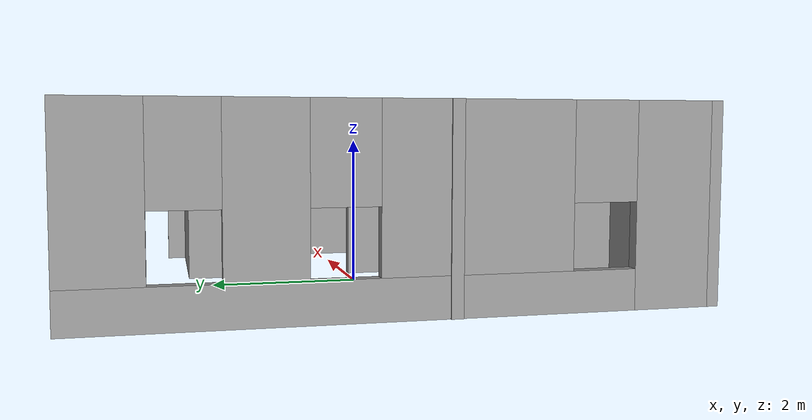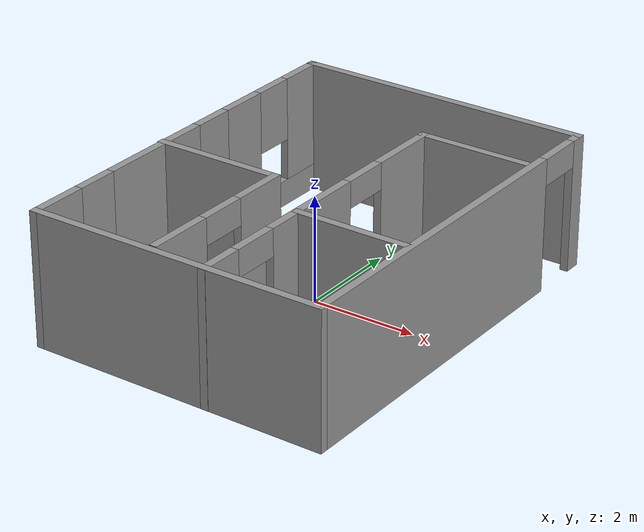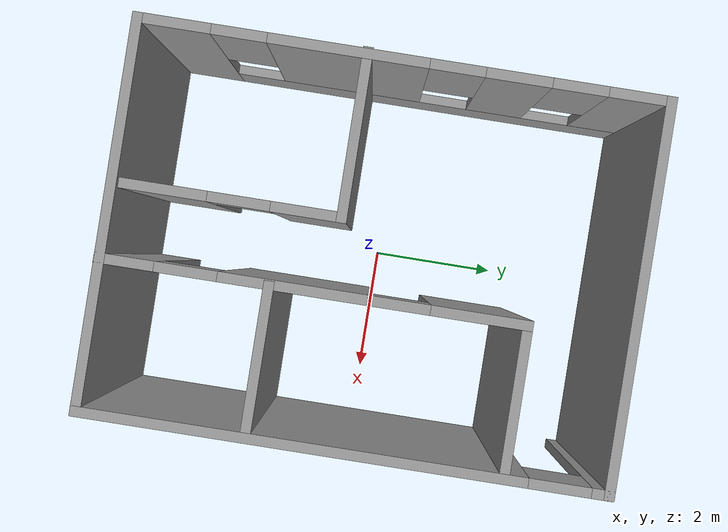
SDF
<?xml version='1.0'?>
<sdf version='1.6'>
  <model name='test_apartment'>
    <pose frame=''>0.059416 -0.066094 0 0 -0 0</pose>
    <link name='Wall_0'>
      <collision name='Wall_0_Collision'>
        <geometry>
          <box>
            <size>5.75 0.15 2.5</size>
          </box>
        </geometry>
        <pose frame=''>0 0 1.25 0 -0 0</pose>
      </collision>
      <visual name='Wall_0_Visual'>
        <pose frame=''>0 0 1.25 0 -0 0</pose>
        <geometry>
          <box>
            <size>5.75 0.15 2.5</size>
          </box>
        </geometry>
        <material>
          <script>
            <uri>file://media/materials/scripts/gazebo.material</uri>
            <name>Gazebo/Grey</name>
          </script>
          <ambient>1 1 1 1</ambient>
        </material>
      </visual>
      <pose frame=''>0.010057 3.80146 0 0 -0 0</pose>
    </link>
    <link name='Wall_1'>
      <pose frame=''>2.81006 0.001465 0 0 0 -1.5708</pose>
      <visual name='Wall_1_Visual_0'>
        <pose frame=''>-3.71051 0 1.25 0 -0 0</pose>
        <geometry>
          <box>
            <size>0.328975 0.15 2.5</size>
          </box>
        </geometry>
        <material>
          <script>
            <uri>file://media/materials/scripts/gazebo.material</uri>
            <name>Gazebo/Grey</name>
          </script>
          <ambient>1 1 1 1</ambient>
        </material>
      </visual>
      <collision name='Wall_1_Collision_0'>
        <geometry>
          <box>
            <size>0.328975 0.15 2.5</size>
          </box>
        </geometry>
        <pose frame=''>-3.71051 0 1.25 0 -0 0</pose>
      </collision>
      <visual name='Wall_1_Visual_1'>
        <pose frame=''>0.614488 0 1.25 0 -0 0</pose>
        <geometry>
          <box>
            <size>6.52102 0.15 2.5</size>
          </box>
        </geometry>
        <material>
          <script>
            <uri>file://media/materials/scripts/gazebo.material</uri>
            <name>Gazebo/Grey</name>
          </script>
          <ambient>1 1 1 1</ambient>
        </material>
      </visual>
      <collision name='Wall_1_Collision_1'>
        <geometry>
          <box>
            <size>6.52102 0.15 2.5</size>
          </box>
        </geometry>
        <pose frame=''>0.614488 0 1.25 0 -0 0</pose>
      </collision>
      <visual name='Wall_1_Visual_2'>
        <pose frame=''>-3.09603 0 2.25 0 -0 0</pose>
        <geometry>
          <box>
            <size>0.9 0.15 0.5</size>
          </box>
        </geometry>
        <material>
          <script>
            <uri>file://media/materials/scripts/gazebo.material</uri>
            <name>Gazebo/Grey</name>
          </script>
          <ambient>1 1 1 1</ambient>
        </material>
      </visual>
      <collision name='Wall_1_Collision_2'>
        <geometry>
          <box>
            <size>0.9 0.15 0.5</size>
          </box>
        </geometry>
        <pose frame=''>-3.09603 0 2.25 0 -0 0</pose>
      </collision>
    </link>
    <link name='Wall_11'>
      <collision name='Wall_11_Collision'>
        <geometry>
          <box>
            <size>2.25 0.15 2.5</size>
          </box>
        </geometry>
        <pose frame=''>0 0 1.25 0 -0 0</pose>
      </collision>
      <visual name='Wall_11_Visual'>
        <pose frame=''>0 0 1.25 0 -0 0</pose>
        <geometry>
          <box>
            <size>2.25 0.15 2.5</size>
          </box>
        </geometry>
        <material>
          <script>
            <uri>file://media/materials/scripts/gazebo.material</uri>
            <name>Gazebo/Grey</name>
          </script>
          <ambient>1 1 1 1</ambient>
        </material>
      </visual>
      <pose frame=''>1.69948 -1.38784 0 0 -0 0</pose>
    </link>
    <link name='Wall_2'>
      <collision name='Wall_2_Collision'>
        <geometry>
          <box>
            <size>5.75 0.15 2.5</size>
          </box>
        </geometry>
        <pose frame=''>0 0 1.25 0 -0 0</pose>
      </collision>
      <visual name='Wall_2_Visual'>
        <pose frame=''>0 0 1.25 0 -0 0</pose>
        <geometry>
          <box>
            <size>5.75 0.15 2.5</size>
          </box>
        </geometry>
        <material>
          <script>
            <uri>file://media/materials/scripts/gazebo.material</uri>
            <name>Gazebo/Grey</name>
          </script>
          <ambient>1 1 1 1</ambient>
        </material>
      </visual>
      <pose frame=''>0.010057 -3.79854 0 0 -0 3.14159</pose>
    </link>
    <link name='Wall_3'>
      <pose frame=''>-2.78994 0.001465 0 0 -0 1.5708</pose>
      <visual name='Wall_3_Visual_0'>
        <pose frame=''>-3.31488 0 1.25 0 -0 0</pose>
        <geometry>
          <box>
            <size>1.12025 0.15 2.5</size>
          </box>
        </geometry>
        <material>
          <script>
            <uri>file://media/materials/scripts/gazebo.material</uri>
            <name>Gazebo/Grey</name>
          </script>
          <ambient>1 1 1 1</ambient>
        </material>
      </visual>
      <collision name='Wall_3_Collision_0'>
        <geometry>
          <box>
            <size>1.12025 0.15 2.5</size>
          </box>
        </geometry>
        <pose frame=''>-3.31488 0 1.25 0 -0 0</pose>
      </collision>
      <visual name='Wall_3_Visual_1'>
        <pose frame=''>0.560124 0 0.25 0 -0 0</pose>
        <geometry>
          <box>
            <size>6.62975 0.15 0.5</size>
          </box>
        </geometry>
        <material>
          <script>
            <uri>file://media/materials/scripts/gazebo.material</uri>
            <name>Gazebo/Grey</name>
          </script>
          <ambient>1 1 1 1</ambient>
        </material>
      </visual>
      <collision name='Wall_3_Collision_1'>
        <geometry>
          <box>
            <size>6.62975 0.15 0.5</size>
          </box>
        </geometry>
        <pose frame=''>0.560124 0 0.25 0 -0 0</pose>
      </collision>
      <visual name='Wall_3_Visual_2'>
        <pose frame=''>-0.795951 0 1.5 0 -0 0</pose>
        <geometry>
          <box>
            <size>2.3176 0.15 2</size>
          </box>
        </geometry>
        <material>
          <script>
            <uri>file://media/materials/scripts/gazebo.material</uri>
            <name>Gazebo/Grey</name>
          </script>
          <ambient>1 1 1 1</ambient>
        </material>
      </visual>
      <collision name='Wall_3_Collision_2'>
        <geometry>
          <box>
            <size>2.3176 0.15 2</size>
          </box>
        </geometry>
        <pose frame=''>-0.795951 0 1.5 0 -0 0</pose>
      </collision>
      <visual name='Wall_3_Visual_3'>
        <pose frame=''>1.63779 0 1.5 0 -0 0</pose>
        <geometry>
          <box>
            <size>0.949881 0.15 2</size>
          </box>
        </geometry>
        <material>
          <script>
            <uri>file://media/materials/scripts/gazebo.material</uri>
            <name>Gazebo/Grey</name>
          </script>
          <ambient>1 1 1 1</ambient>
        </material>
      </visual>
      <collision name='Wall_3_Collision_3'>
        <geometry>
          <box>
            <size>0.949881 0.15 2</size>
          </box>
        </geometry>
        <pose frame=''>1.63779 0 1.5 0 -0 0</pose>
      </collision>
      <visual name='Wall_3_Visual_4'>
        <pose frame=''>3.39387 0 1.5 0 -0 0</pose>
        <geometry>
          <box>
            <size>0.962269 0.15 2</size>
          </box>
        </geometry>
        <material>
          <script>
            <uri>file://media/materials/scripts/gazebo.material</uri>
            <name>Gazebo/Grey</name>
          </script>
          <ambient>1 1 1 1</ambient>
        </material>
      </visual>
      <collision name='Wall_3_Collision_4'>
        <geometry>
          <box>
            <size>0.962269 0.15 2</size>
          </box>
        </geometry>
        <pose frame=''>3.39387 0 1.5 0 -0 0</pose>
      </collision>
      <visual name='Wall_3_Visual_5'>
        <pose frame=''>-2.35475 0 1.9 0 -0 0</pose>
        <geometry>
          <box>
            <size>0.8 0.15 1.2</size>
          </box>
        </geometry>
        <material>
          <script>
            <uri>file://media/materials/scripts/gazebo.material</uri>
            <name>Gazebo/Grey</name>
          </script>
          <ambient>1 1 1 1</ambient>
        </material>
      </visual>
      <collision name='Wall_3_Collision_5'>
        <geometry>
          <box>
            <size>0.8 0.15 1.2</size>
          </box>
        </geometry>
        <pose frame=''>-2.35475 0 1.9 0 -0 0</pose>
      </collision>
      <visual name='Wall_3_Visual_6'>
        <pose frame=''>0.762851 0 1.9 0 -0 0</pose>
        <geometry>
          <box>
            <size>0.8 0.15 1.2</size>
          </box>
        </geometry>
        <material>
          <script>
            <uri>file://media/materials/scripts/gazebo.material</uri>
            <name>Gazebo/Grey</name>
          </script>
          <ambient>1 1 1 1</ambient>
        </material>
      </visual>
      <collision name='Wall_3_Collision_6'>
        <geometry>
          <box>
            <size>0.8 0.15 1.2</size>
          </box>
        </geometry>
        <pose frame=''>0.762851 0 1.9 0 -0 0</pose>
      </collision>
      <visual name='Wall_3_Visual_7'>
        <pose frame=''>2.51273 0 1.9 0 -0 0</pose>
        <geometry>
          <box>
            <size>0.8 0.15 1.2</size>
          </box>
        </geometry>
        <material>
          <script>
            <uri>file://media/materials/scripts/gazebo.material</uri>
            <name>Gazebo/Grey</name>
          </script>
          <ambient>1 1 1 1</ambient>
        </material>
      </visual>
      <collision name='Wall_3_Collision_7'>
        <geometry>
          <box>
            <size>0.8 0.15 1.2</size>
          </box>
        </geometry>
        <pose frame=''>2.51273 0 1.9 0 -0 0</pose>
      </collision>
    </link>
    <link name='Wall_5'>
      <collision name='Wall_5_Collision'>
        <geometry>
          <box>
            <size>2.5 0.15 2.5</size>
          </box>
        </geometry>
        <pose frame=''>0 0 1.25 0 -0 0</pose>
      </collision>
      <visual name='Wall_5_Visual'>
        <pose frame=''>0 0 1.25 0 -0 0</pose>
        <geometry>
          <box>
            <size>2.5 0.15 2.5</size>
          </box>
        </geometry>
        <material>
          <script>
            <uri>file://media/materials/scripts/gazebo.material</uri>
            <name>Gazebo/Grey</name>
          </script>
          <ambient>1 1 1 1</ambient>
        </material>
      </visual>
      <pose frame=''>-1.63506 -0.522953 0 0 -0 0</pose>
    </link>
    <link name='Wall_6'>
      <pose frame=''>-0.460057 -2.07295 0 0 0 -1.5708</pose>
      <visual name='Wall_6_Visual_0'>
        <pose frame=''>-1.07835 0 1.25 0 -0 0</pose>
        <geometry>
          <box>
            <size>1.09329 0.15 2.5</size>
          </box>
        </geometry>
        <material>
          <script>
            <uri>file://media/materials/scripts/gazebo.material</uri>
            <name>Gazebo/Grey</name>
          </script>
          <ambient>1 1 1 1</ambient>
        </material>
      </visual>
      <collision name='Wall_6_Collision_0'>
        <geometry>
          <box>
            <size>1.09329 0.15 2.5</size>
          </box>
        </geometry>
        <pose frame=''>-1.07835 0 1.25 0 -0 0</pose>
      </collision>
      <visual name='Wall_6_Visual_1'>
        <pose frame=''>0.996645 0 1.25 0 -0 0</pose>
        <geometry>
          <box>
            <size>1.25671 0.15 2.5</size>
          </box>
        </geometry>
        <material>
          <script>
            <uri>file://media/materials/scripts/gazebo.material</uri>
            <name>Gazebo/Grey</name>
          </script>
          <ambient>1 1 1 1</ambient>
        </material>
      </visual>
      <collision name='Wall_6_Collision_1'>
        <geometry>
          <box>
            <size>1.25671 0.15 2.5</size>
          </box>
        </geometry>
        <pose frame=''>0.996645 0 1.25 0 -0 0</pose>
      </collision>
      <visual name='Wall_6_Visual_2'>
        <pose frame=''>-0.081709 0 2.25 0 -0 0</pose>
        <geometry>
          <box>
            <size>0.9 0.15 0.5</size>
          </box>
        </geometry>
        <material>
          <script>
            <uri>file://media/materials/scripts/gazebo.material</uri>
            <name>Gazebo/Grey</name>
          </script>
          <ambient>1 1 1 1</ambient>
        </material>
      </visual>
      <collision name='Wall_6_Collision_2'>
        <geometry>
          <box>
            <size>0.9 0.15 0.5</size>
          </box>
        </geometry>
        <pose frame=''>-0.081709 0 2.25 0 -0 0</pose>
      </collision>
    </link>
    <link name='Wall_8'>
      <pose frame=''>0.629364 -0.751465 0 0 -0 1.5708</pose>
      <visual name='Wall_8_Visual_0'>
        <pose frame=''>-2.69904 0 1.25 0 -0 0</pose>
        <geometry>
          <box>
            <size>0.851928 0.15 2.5</size>
          </box>
        </geometry>
        <material>
          <script>
            <uri>file://media/materials/scripts/gazebo.material</uri>
            <name>Gazebo/Grey</name>
          </script>
          <ambient>1 1 1 1</ambient>
        </material>
      </visual>
      <collision name='Wall_8_Collision_0'>
        <geometry>
          <box>
            <size>0.851928 0.15 2.5</size>
          </box>
        </geometry>
        <pose frame=''>-2.69904 0 1.25 0 -0 0</pose>
      </collision>
      <visual name='Wall_8_Visual_1'>
        <pose frame=''>-0.304497 0 1.25 0 -0 0</pose>
        <geometry>
          <box>
            <size>2.13715 0.15 2.5</size>
          </box>
        </geometry>
        <material>
          <script>
            <uri>file://media/materials/scripts/gazebo.material</uri>
            <name>Gazebo/Grey</name>
          </script>
          <ambient>1 1 1 1</ambient>
        </material>
      </visual>
      <collision name='Wall_8_Collision_1'>
        <geometry>
          <box>
            <size>2.13715 0.15 2.5</size>
          </box>
        </geometry>
        <pose frame=''>-0.304497 0 1.25 0 -0 0</pose>
      </collision>
      <visual name='Wall_8_Visual_2'>
        <pose frame=''>2.39454 0 1.25 0 -0 0</pose>
        <geometry>
          <box>
            <size>1.46092 0.15 2.5</size>
          </box>
        </geometry>
        <material>
          <script>
            <uri>file://media/materials/scripts/gazebo.material</uri>
            <name>Gazebo/Grey</name>
          </script>
          <ambient>1 1 1 1</ambient>
        </material>
      </visual>
      <collision name='Wall_8_Collision_2'>
        <geometry>
          <box>
            <size>1.46092 0.15 2.5</size>
          </box>
        </geometry>
        <pose frame=''>2.39454 0 1.25 0 -0 0</pose>
      </collision>
      <visual name='Wall_8_Visual_3'>
        <pose frame=''>-1.82307 0 2.25 0 -0 0</pose>
        <geometry>
          <box>
            <size>0.9 0.15 0.5</size>
          </box>
        </geometry>
        <material>
          <script>
            <uri>file://media/materials/scripts/gazebo.material</uri>
            <name>Gazebo/Grey</name>
          </script>
          <ambient>1 1 1 1</ambient>
        </material>
      </visual>
      <collision name='Wall_8_Collision_3'>
        <geometry>
          <box>
            <size>0.9 0.15 0.5</size>
          </box>
        </geometry>
        <pose frame=''>-1.82307 0 2.25 0 -0 0</pose>
      </collision>
      <visual name='Wall_8_Visual_4'>
        <pose frame=''>1.21408 0 2.25 0 -0 0</pose>
        <geometry>
          <box>
            <size>0.9 0.15 0.5</size>
          </box>
        </geometry>
        <material>
          <script>
            <uri>file://media/materials/scripts/gazebo.material</uri>
            <name>Gazebo/Grey</name>
          </script>
          <ambient>1 1 1 1</ambient>
        </material>
      </visual>
      <collision name='Wall_8_Collision_4'>
        <geometry>
          <box>
            <size>0.9 0.15 0.5</size>
          </box>
        </geometry>
        <pose frame=''>1.21408 0 2.25 0 -0 0</pose>
      </collision>
    </link>
    <link name='Wall_9'>
      <collision name='Wall_9_Collision'>
        <geometry>
          <box>
            <size>2.25 0.15 2.5</size>
          </box>
        </geometry>
        <pose frame=''>0 0 1.25 0 -0 0</pose>
      </collision>
      <visual name='Wall_9_Visual'>
        <pose frame=''>0 0 1.25 0 -0 0</pose>
        <geometry>
          <box>
            <size>2.25 0.15 2.5</size>
          </box>
        </geometry>
        <material>
          <script>
            <uri>file://media/materials/scripts/gazebo.material</uri>
            <name>Gazebo/Grey</name>
          </script>
          <ambient>1 1 1 1</ambient>
        </material>
      </visual>
      <pose frame=''>1.67936 2.29854 0 0 -0 0</pose>
    </link>
    <static>1</static>
  </model>
</sdf>
